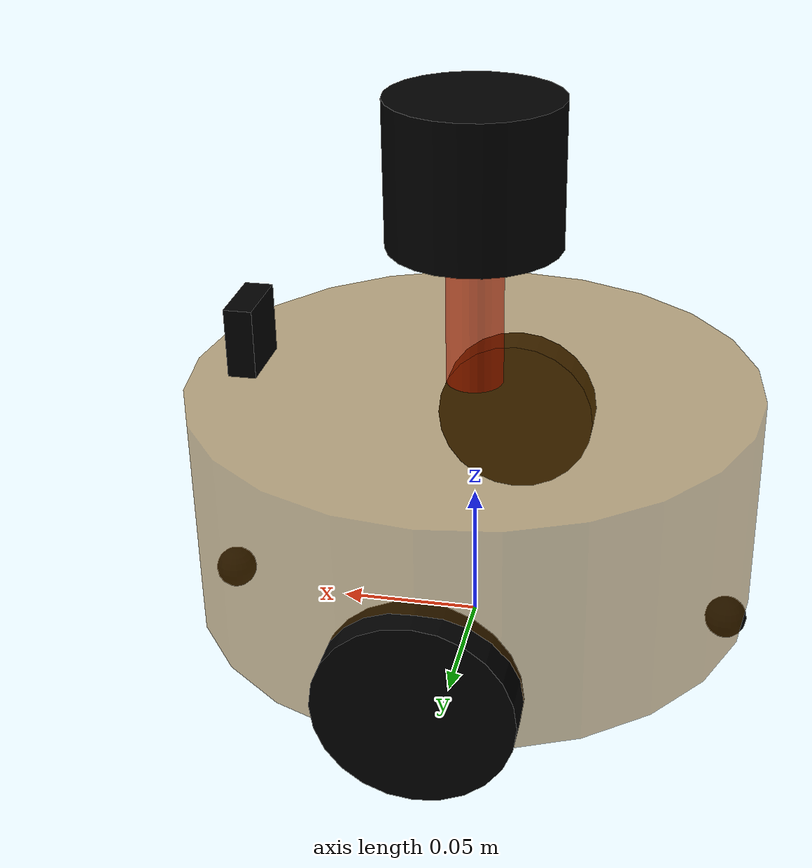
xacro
<!-- 组合小车底盘与摄像头 -->
<robot name="car" xmlns:xacro="http://wiki.ros.org/xacro">
    <xacro:include filename="inertia.urdf.xacro" />
    <xacro:include filename="base.urdf.xacro" />
    <xacro:include filename="camera.urdf.xacro" />
    <xacro:include filename="laser.urdf.xacro" />
    <xacro:include filename="move.urdf.xacro" />
    <xacro:include filename="sensors_laser.urdf.xacro" />
    <xacro:include filename="sensors_camera.urdf.xacro" />
</robot>

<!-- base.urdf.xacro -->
<!--
    使用 xacro 优化 URDF 版的小车底盘实现：

    实现思路:
    1.将一些常量、变量封装为 xacro:property
      比如:PI 值、小车底盘半径、离地间距、车轮半径、宽度 ....
    2.使用 宏 封装驱动轮以及支撑轮实现，调用相关宏生成驱动轮与支撑轮

-->
<!-- 根标签，必须声明 xmlns:xacro -->
<robot name="base" xmlns:xacro="http://www.ros.org/wiki/xacro">
    <!-- 封装变量、常量 -->
    <!-- PI 值设置精度需要高一些，否则后续车轮翻转量计算时，可能会出现肉眼不能察觉的车轮倾斜，从而导致模型抖动 -->
    <xacro:property name="PI" value="3.1415926"/>
    <!-- 宏:黑色设置 -->
    <material name="black">
        <color rgba="0.0 0.0 0.0 1.0" />
    </material>
    <!-- 底盘属性 -->
    <xacro:property name="base_footprint_radius" value="0.001" /> <!-- base_footprint 半径  -->
    <xacro:property name="base_link_radius" value="0.1" /> <!-- base_link 半径 -->
    <xacro:property name="base_link_length" value="0.08" /> <!-- base_link 长 -->
    <xacro:property name="earth_space" value="0.015" /> <!-- 离地间距 -->
    <xacro:property name="base_link_m" value="0.5" /> <!-- 质量  -->

    <!-- 底盘 -->
    <link name="base_footprint">
      <visual>
        <geometry>
          <sphere radius="${base_footprint_radius}" />
        </geometry>
      </visual>
    </link>

    <link name="base_link">
      <visual>
        <geometry>
          <cylinder radius="${base_link_radius}" length="${base_link_length}" />
        </geometry>
        <origin xyz="0 0 0" rpy="0 0 0" />
        <material name="yellow">
          <color rgba="0.5 0.3 0.0 0.5" />
        </material>
      </visual>
      <collision>
        <geometry>
          <cylinder radius="${base_link_radius}" length="${base_link_length}" />
        </geometry>
        <origin xyz="0 0 0" rpy="0 0 0" />
      </collision>
      <xacro:cylinder_inertial_matrix m="${base_link_m}" r="${base_link_radius}" h="${base_link_length}" />

    </link>

    <joint name="base_link2base_footprint" type="fixed">
      <parent link="base_footprint" />
      <child link="base_link" />
      <origin xyz="0 0 ${earth_space + base_link_length / 2 }" />
    </joint>
    <gazebo reference="base_link">
        <material>Gazebo/Yellow</material>
    </gazebo>

    <!-- 驱动轮 -->
    <!-- 驱动轮属性 -->
    <xacro:property name="wheel_radius" value="0.0325" /><!-- 半径 -->
    <xacro:property name="wheel_length" value="0.015" /><!-- 宽度 -->
    <xacro:property name="wheel_m" value="0.05" /> <!-- 质量  -->

    <!-- 驱动轮宏实现 -->
    <xacro:macro name="add_wheels" params="name flag">
      <link name="${name}_wheel">
        <visual>
          <geometry>
            <cylinder radius="${wheel_radius}" length="${wheel_length}" />
          </geometry>
          <origin xyz="0.0 0.0 0.0" rpy="${PI / 2} 0.0 0.0" />
          <material name="black" />
        </visual>
        <collision>
          <geometry>
            <cylinder radius="${wheel_radius}" length="${wheel_length}" />
          </geometry>
          <origin xyz="0.0 0.0 0.0" rpy="${PI / 2} 0.0 0.0" />
        </collision>
        <xacro:cylinder_inertial_matrix m="${wheel_m}" r="${wheel_radius}" h="${wheel_length}" />

      </link>

      <joint name="${name}_wheel2base_link" type="continuous">
        <parent link="base_link" />
        <child link="${name}_wheel" />
        <origin xyz="0 ${flag * base_link_radius} ${-(earth_space + base_link_length / 2 - wheel_radius) }" />
        <axis xyz="0 1 0" />
      </joint>

      <gazebo reference="${name}_wheel">
        <material>Gazebo/Red</material>
      </gazebo>

    </xacro:macro>
    <xacro:add_wheels name="left" flag="1" />
    <xacro:add_wheels name="right" flag="-1" />
    <!-- 支撑轮 -->
    <!-- 支撑轮属性 -->
    <xacro:property name="support_wheel_radius" value="0.0075" /> <!-- 支撑轮半径 -->
    <xacro:property name="support_wheel_m" value="0.03" /> <!-- 质量  -->

    <!-- 支撑轮宏 -->
    <xacro:macro name="add_support_wheel" params="name flag" >
      <link name="${name}_wheel">
        <visual>
            <geometry>
                <sphere radius="${support_wheel_radius}" />
            </geometry>
            <origin xyz="0 0 0" rpy="0 0 0" />
            <material name="black" />
        </visual>
        <collision>
            <geometry>
                <sphere radius="${support_wheel_radius}" />
            </geometry>
            <origin xyz="0 0 0" rpy="0 0 0" />
        </collision>
        <xacro:sphere_inertial_matrix m="${support_wheel_m}" r="${support_wheel_radius}" />
      </link>

      <joint name="${name}_wheel2base_link" type="continuous">
          <parent link="base_link" />
          <child link="${name}_wheel" />
          <origin xyz="${flag * (base_link_radius - support_wheel_radius)} 0 ${-(base_link_length / 2 + earth_space / 2)}" />
          <axis xyz="1 1 1" />
      </joint>
      <gazebo reference="${name}_wheel">
        <material>Gazebo/Red</material>
      </gazebo>
    </xacro:macro>

    <xacro:add_support_wheel name="front" flag="1" />
    <xacro:add_support_wheel name="back" flag="-1" />

</robot>

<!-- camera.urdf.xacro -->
<!-- 摄像头相关的 xacro 文件 -->
<robot name="camera" xmlns:xacro="http://wiki.ros.org/xacro">
    <!-- 摄像头属性 -->
    <xacro:property name="camera_length" value="0.01" /> <!-- 摄像头长度(x) -->
    <xacro:property name="camera_width" value="0.025" /> <!-- 摄像头宽度(y) -->
    <xacro:property name="camera_height" value="0.025" /> <!-- 摄像头高度(z) -->
    <xacro:property name="camera_x" value="0.08" /> <!-- 摄像头安装的x坐标 -->
    <xacro:property name="camera_y" value="0.0" /> <!-- 摄像头安装的y坐标 -->
    <xacro:property name="camera_z" value="${base_link_length / 2 + camera_height / 2}" /> <!-- 摄像头安装的z坐标:底盘高度 / 2 + 摄像头高度 / 2  -->

    <xacro:property name="camera_m" value="0.01" /> <!-- 摄像头质量 -->

    <!-- 摄像头关节以及link -->
    <link name="camera">
        <visual>
            <geometry>
                <box size="${camera_length} ${camera_width} ${camera_height}" />
            </geometry>
            <origin xyz="0.0 0.0 0.0" rpy="0.0 0.0 0.0" />
            <material name="black" />
        </visual>
        <collision>
            <geometry>
                <box size="${camera_length} ${camera_width} ${camera_height}" />
            </geometry>
            <origin xyz="0.0 0.0 0.0" rpy="0.0 0.0 0.0" />
        </collision>
        <xacro:Box_inertial_matrix m="${camera_m}" l="${camera_length}" w="${camera_width}" h="${camera_height}" />
    </link>

    <joint name="camera2base_link" type="fixed">
        <parent link="base_link" />
        <child link="camera" />
        <origin xyz="${camera_x} ${camera_y} ${camera_z}" />
    </joint>
    <gazebo reference="camera">
        <material>Gazebo/Blue</material>
    </gazebo>
</robot>

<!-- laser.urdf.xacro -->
<!--
    小车底盘添加雷达
-->
<robot name="laser" xmlns:xacro="http://wiki.ros.org/xacro">

    <!-- 雷达支架 -->
    <xacro:property name="support_length" value="0.05" /> <!-- 支架长度 -->
    <xacro:property name="support_radius" value="0.01" /> <!-- 支架半径 -->
    <xacro:property name="support_x" value="0.0" /> <!-- 支架安装的x坐标 -->
    <xacro:property name="support_y" value="0.0" /> <!-- 支架安装的y坐标 -->
    <xacro:property name="support_z" value="${base_link_length / 2 + support_length / 2}" /> <!-- 支架安装的z坐标:底盘高度 / 2 + 支架高度 / 2  -->

    <link name="support">
        <visual>
            <geometry>
                <cylinder radius="${support_radius}" length="${support_length}" />
            </geometry>
            <origin xyz="0.0 0.0 0.0" rpy="0.0 0.0 0.0" />
            <material name="red">
                <color rgba="0.8 0.2 0.0 0.8" />
            </material>
        </visual>
    </link>

    <joint name="support2base_link" type="fixed">
        <parent link="base_link" />
        <child link="support" />
        <origin xyz="${support_x} ${support_y} ${support_z}" />
    </joint>

    <!-- 雷达属性 -->
    <xacro:property name="laser_length" value="0.05" /> <!-- 雷达长度 -->
    <xacro:property name="laser_radius" value="0.03" /> <!-- 雷达半径 -->
    <xacro:property name="laser_x" value="0.0" /> <!-- 雷达安装的x坐标 -->
    <xacro:property name="laser_y" value="0.0" /> <!-- 雷达安装的y坐标 -->
    <xacro:property name="laser_z" value="${support_length / 2 + laser_length / 2}" /> <!-- 雷达安装的z坐标:支架高度 / 2 + 雷达高度 / 2  -->

    <!-- 雷达关节以及link -->
    <link name="laser">
        <visual>
            <geometry>
                <cylinder radius="${laser_radius}" length="${laser_length}" />
            </geometry>
            <origin xyz="0.0 0.0 0.0" rpy="0.0 0.0 0.0" />
            <material name="black" />
        </visual>
    </link>

    <joint name="laser2support" type="fixed">
        <parent link="support" />
        <child link="laser" />
        <origin xyz="${laser_x} ${laser_y} ${laser_z}" />
    </joint>
</robot>
